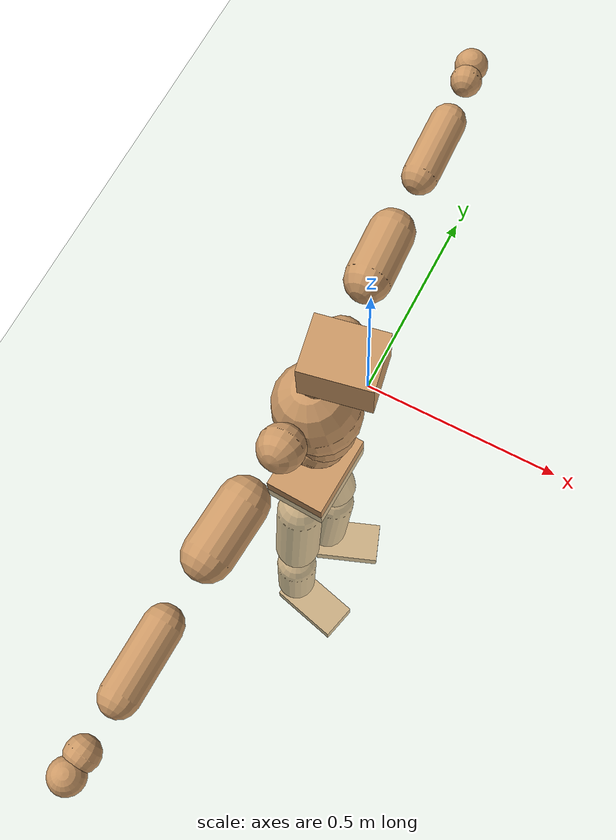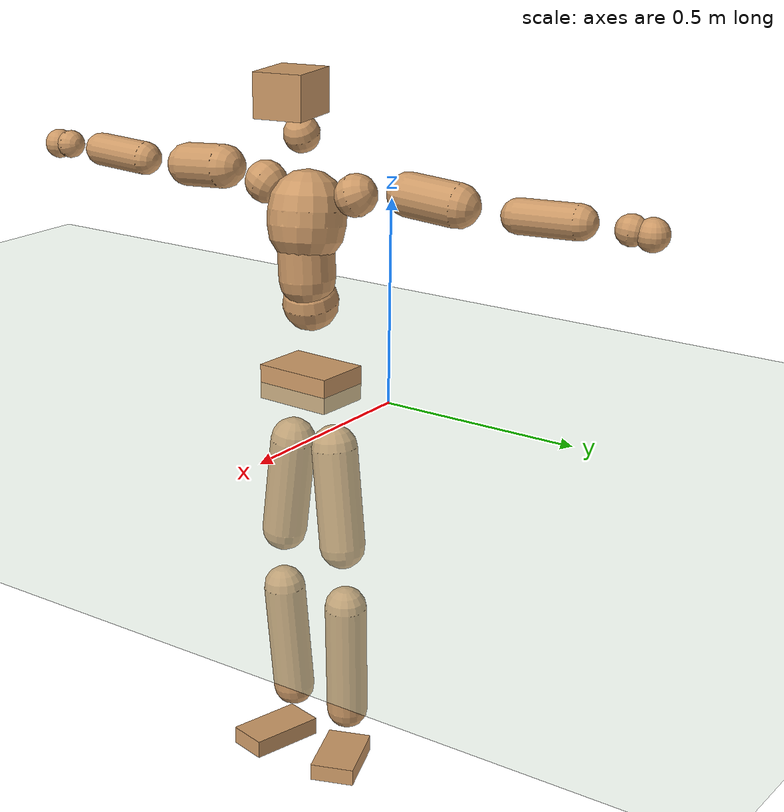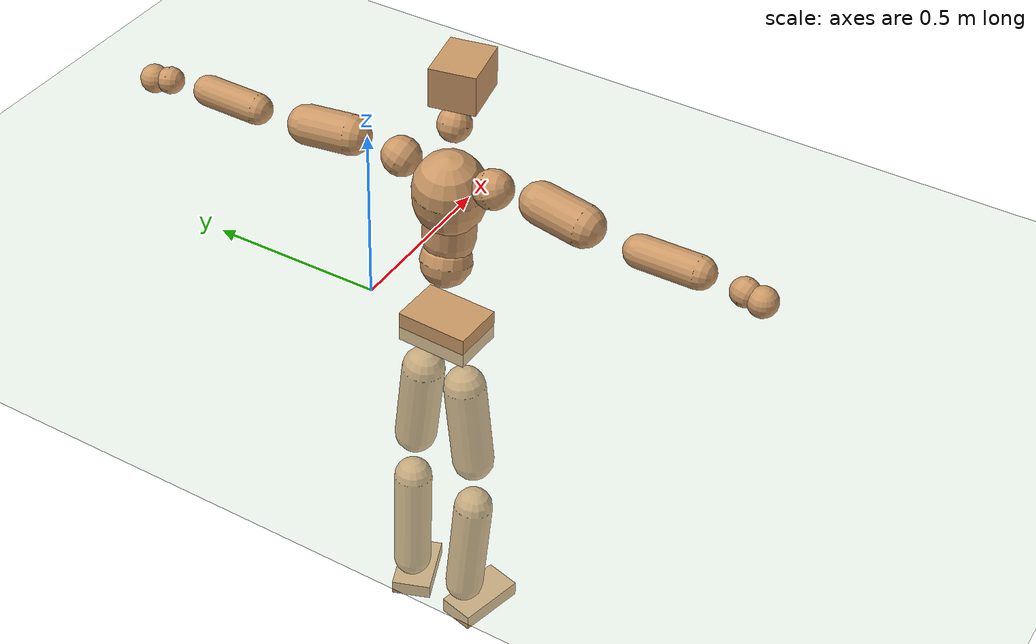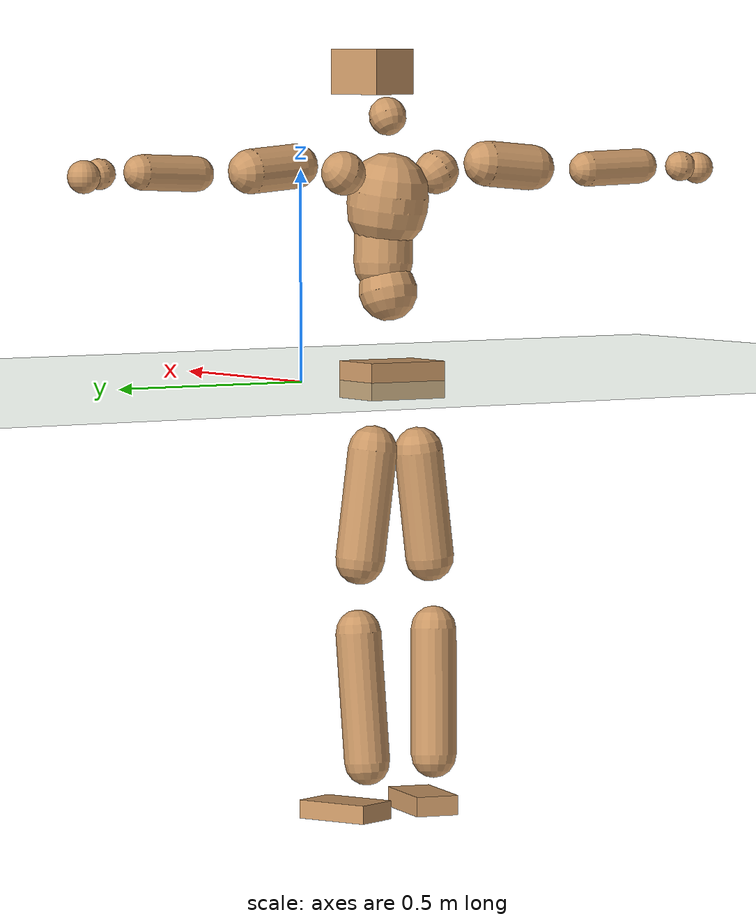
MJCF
<mujoco model="humanoid">
  <compiler coordinate="local" angle="radian"/>
  <default>
    <joint damping="0.0" armature="0.01" stiffness="0.0" limited="true"/>
    <geom conaffinity="1" condim="3" contype="7" margin="0.001" rgba="0.8 0.6 .4 1"/>
  </default>
  <asset>
    <texture type="skybox" builtin="gradient" rgb1=".4 .5 .6" rgb2="0 0 0" width="100" height="100"/>
    <texture builtin="flat" height="1278" mark="cross" markrgb="1 1 1" name="texgeom" random="0.01" rgb1="0.8 0.6 0.4" rgb2="0.8 0.6 0.4" type="cube" width="127"/>
    <texture builtin="checker" height="100" name="texplane" rgb1="0 0 0" rgb2="0.8 0.8 0.8" type="2d" width="100"/>
    <material name="MatPlane" reflectance="0.5" shininess="1" specular="1" texrepeat="60 60" texture="texplane"/>
    <material name="geom" texture="texgeom" texuniform="true"/>
  </asset>
  <worldbody>
    <light cutoff="100" diffuse="1 1 1" dir="-0 0 -1.3" directional="true" exponent="1" pos="0 0 1.3" specular=".1 .1 .1"/>
    <geom conaffinity="1" condim="3" name="floor" pos="0 0 0" rgba="0.8 0.9 0.8 1" size="100 100 .2" type="plane" material="MatPlane"/>
    <body name="Pelvis" pos="-0.0022 -0.2471 0.0086">
      <freejoint name="Pelvis"/>
      <geom type="box" contype="1" conaffinity="1" density="5359.374557" pos="-0.0128 0.0005 -0.0091" size="0.0737 0.1015 0.044" quat="0.9998 0.0000 0.0000 -0.0203" name="Pelvis"/>
      <body name="L_Hip" pos="-0.028 0.0541 -0.0863">
        <joint name="L_Hip_x" type="hinge" pos="0 0 0" axis="1 0 0" stiffness="1600" damping="160" armature="0.02" range="-180.0000 180.0000"/>
        <joint name="L_Hip_y" type="hinge" pos="0 0 0" axis="0 1 0" stiffness="1600" damping="160" armature="0.02" range="-180.0000 180.0000"/>
        <joint name="L_Hip_z" type="hinge" pos="0 0 0" axis="0 0 1" stiffness="1600" damping="160" armature="0.02" range="-180.0000 180.0000"/>
        <geom type="capsule" contype="1" conaffinity="1" density="2040.816327" size="0.059" fromto="0.0023 0.0106 -0.0884 0.0090 0.0417 -0.3479" name="L_Hip"/>
        <body name="L_Knee" pos="0.0113 0.0522 -0.4363">
          <joint name="L_Knee_x" type="hinge" pos="0 0 0" axis="1 0 0" stiffness="1600" damping="160" armature="0.02" range="-180.0000 180.0000"/>
          <joint name="L_Knee_y" type="hinge" pos="0 0 0" axis="0 1 0" stiffness="1600" damping="160" armature="0.02" range="-180.0000 180.0000"/>
          <joint name="L_Knee_z" type="hinge" pos="0 0 0" axis="0 0 1" stiffness="1600" damping="160" armature="0.02" range="-180.0000 180.0000"/>
          <geom type="capsule" contype="1" conaffinity="1" density="1234.567901" size="0.0543" fromto="-0.0064 -0.0026 -0.0840 -0.0298 -0.0120 -0.3925" name="L_Knee"/>
          <body name="L_Ankle" pos="-0.0362 -0.0146 -0.4765">
            <joint name="L_Ankle_x" type="hinge" pos="0 0 0" axis="1 0 0" stiffness="1600" damping="160" armature="0.02" range="-180.0000 180.0000"/>
            <joint name="L_Ankle_y" type="hinge" pos="0 0 0" axis="0 1 0" stiffness="1600" damping="160" armature="0.02" range="-180.0000 180.0000"/>
            <joint name="L_Ankle_z" type="hinge" pos="0 0 0" axis="0 0 1" stiffness="1600" damping="160" armature="0.02" range="-180.0000 180.0000"/>
            <geom type="box" contype="1" conaffinity="1" density="999.999981" pos="0.0660 0.0250 -0.0337" size="0.0929 0.0568 0.022" quat="0.9837 0.0000 0.0000 0.1799" name="L_Ankle"/>
            <body name="L_Toe" pos="0.132 0.05 -0.0674">
              <joint name="L_Toe_x" type="hinge" pos="0 0 0" axis="1 0 0" stiffness="1000" damping="100" armature="0.02" range="-180.0000 180.0000"/>
              <joint name="L_Toe_y" type="hinge" pos="0 0 0" axis="0 1 0" stiffness="1000" damping="100" armature="0.02" range="-180.0000 180.0000"/>
              <joint name="L_Toe_z" type="hinge" pos="0 0 0" axis="0 0 1" stiffness="1000" damping="100" armature="0.02" range="-180.0000 180.0000"/>
              <geom type="box" contype="1" conaffinity="1" density="7565490.881446" pos="0.0000 0.0000 0.0353" size="0.0011 0.0027 0.0012" quat="0.9829 0.0000 0.0000 0.1839" name="L_Toe"/>
            </body>
          </body>
        </body>
      </body>
      <body name="R_Hip" pos="-0.026 -0.0554 -0.0947">
        <joint name="R_Hip_x" type="hinge" pos="0 0 0" axis="1 0 0" stiffness="1600" damping="160" armature="0.02" range="-180.0000 180.0000"/>
        <joint name="R_Hip_y" type="hinge" pos="0 0 0" axis="0 1 0" stiffness="1600" damping="160" armature="0.02" range="-180.0000 180.0000"/>
        <joint name="R_Hip_z" type="hinge" pos="0 0 0" axis="0 0 1" stiffness="1600" damping="160" armature="0.02" range="-180.0000 180.0000"/>
        <geom type="capsule" contype="1" conaffinity="1" density="2040.816327" size="0.0582" fromto="-0.0006 -0.0108 -0.0875 -0.0022 -0.0421 -0.3422" name="R_Hip"/>
        <body name="R_Knee" pos="-0.0027 -0.0529 -0.4297">
          <joint name="R_Knee_x" type="hinge" pos="0 0 0" axis="1 0 0" stiffness="1600" damping="160" armature="0.02" range="-180.0000 180.0000"/>
          <joint name="R_Knee_y" type="hinge" pos="0 0 0" axis="0 1 0" stiffness="1600" damping="160" armature="0.02" range="-180.0000 180.0000"/>
          <joint name="R_Knee_z" type="hinge" pos="0 0 0" axis="0 0 1" stiffness="1600" damping="160" armature="0.02" range="-180.0000 180.0000"/>
          <geom type="capsule" contype="1" conaffinity="1" density="1234.567901" size="0.0546" fromto="-0.0059 0.0039 -0.0844 -0.0272 0.0177 -0.3853" name="R_Knee"/>
          <body name="R_Ankle" pos="-0.0331 0.0216 -0.4697">
            <joint name="R_Ankle_x" type="hinge" pos="0 0 0" axis="1 0 0" stiffness="1600" damping="160" armature="0.02" range="-180.0000 180.0000"/>
            <joint name="R_Ankle_y" type="hinge" pos="0 0 0" axis="0 1 0" stiffness="1600" damping="160" armature="0.02" range="-180.0000 180.0000"/>
            <joint name="R_Ankle_z" type="hinge" pos="0 0 0" axis="0 0 1" stiffness="1600" damping="160" armature="0.02" range="-180.0000 180.0000"/>
            <geom type="box" contype="1" conaffinity="1" density="999.999989" pos="0.0717 -0.0174 -0.0351" size="0.0995 0.0521 0.0236" quat="0.9929 0.0000 0.0000 -0.1190" name="R_Ankle"/>
            <body name="R_Toe" pos="0.1434 -0.0349 -0.0702">
              <joint name="R_Toe_x" type="hinge" pos="0 0 0" axis="1 0 0" stiffness="1000" damping="100" armature="0.02" range="-180.0000 180.0000"/>
              <joint name="R_Toe_y" type="hinge" pos="0 0 0" axis="0 1 0" stiffness="1000" damping="100" armature="0.02" range="-180.0000 180.0000"/>
              <joint name="R_Toe_z" type="hinge" pos="0 0 0" axis="0 0 1" stiffness="1000" damping="100" armature="0.02" range="-180.0000 180.0000"/>
              <geom type="box" contype="1" conaffinity="1" density="8530488.618754" pos="0.0000 0.0000 0.0373" size="0.001 0.0025 0.0013" quat="0.9938 0.0000 0.0000 -0.1110" name="R_Toe"/>
            </body>
          </body>
        </body>
      </body>
      <body name="Torso" pos="-0.0226 0.0044 0.1266">
        <joint name="Torso_x" type="hinge" pos="0 0 0" axis="1 0 0" stiffness="2000" damping="200" armature="0.02" range="-180.0000 180.0000"/>
        <joint name="Torso_y" type="hinge" pos="0 0 0" axis="0 1 0" stiffness="2000" damping="200" armature="0.02" range="-180.0000 180.0000"/>
        <joint name="Torso_z" type="hinge" pos="0 0 0" axis="0 0 1" stiffness="2000" damping="200" armature="0.02" range="-180.0000 180.0000"/>
        <geom type="capsule" contype="1" conaffinity="1" density="2040.816327" size="0.0703" fromto="0.0171 0.0023 0.0733 0.0176 0.0024 0.0752" name="Torso"/>
        <body name="Spine" pos="0.0347 0.0047 0.1485">
          <joint name="Spine_x" type="hinge" pos="0 0 0" axis="1 0 0" stiffness="2000" damping="200" armature="0.02" range="-180.0000 180.0000"/>
          <joint name="Spine_y" type="hinge" pos="0 0 0" axis="0 1 0" stiffness="2000" damping="200" armature="0.02" range="-180.0000 180.0000"/>
          <joint name="Spine_z" type="hinge" pos="0 0 0" axis="0 0 1" stiffness="2000" damping="200" armature="0.02" range="-180.0000 180.0000"/>
          <geom type="capsule" contype="1" conaffinity="1" density="2040.816327" size="0.0706" fromto="0.0013 -0.0030 0.0705 -0.0002 0.0004 -0.0096" name="Spine"/>
          <body name="Chest" pos="0.0011 -0.0026 0.0609">
            <joint name="Chest_x" type="hinge" pos="0 0 0" axis="1 0 0" stiffness="2000" damping="200" armature="0.02" range="-180.0000 180.0000"/>
            <joint name="Chest_y" type="hinge" pos="0 0 0" axis="0 1 0" stiffness="2000" damping="200" armature="0.02" range="-180.0000 180.0000"/>
            <joint name="Chest_z" type="hinge" pos="0 0 0" axis="0 0 1" stiffness="2000" damping="200" armature="0.02" range="-180.0000 180.0000"/>
            <geom type="capsule" contype="1" conaffinity="1" density="2040.816327" size="0.097" fromto="-0.0133 -0.0054 0.0959 -0.0082 -0.0033 0.0591" name="Chest"/>
            <body name="Neck" pos="-0.0256 -0.0151 0.2265">
              <joint name="Neck_x" type="hinge" pos="0 0 0" axis="1 0 0" stiffness="1000" damping="100" armature="0.02" range="-180.0000 180.0000"/>
              <joint name="Neck_y" type="hinge" pos="0 0 0" axis="0 1 0" stiffness="1000" damping="100" armature="0.02" range="-180.0000 180.0000"/>
              <joint name="Neck_z" type="hinge" pos="0 0 0" axis="0 0 1" stiffness="1000" damping="100" armature="0.02" range="-180.0000 180.0000"/>
              <geom type="capsule" contype="1" conaffinity="1" density="1000" size="0.0446" fromto="0.0250 0.0041 0.0510 0.0259 0.0042 0.0528" name="Neck"/>
              <body name="Head" pos="0.0509 0.0083 0.1039">
                <joint name="Head_x" type="hinge" pos="0 0 0" axis="1 0 0" stiffness="1000" damping="100" armature="0.02" range="-180.0000 180.0000"/>
                <joint name="Head_y" type="hinge" pos="0 0 0" axis="0 1 0" stiffness="1000" damping="100" armature="0.02" range="-180.0000 180.0000"/>
                <joint name="Head_z" type="hinge" pos="0 0 0" axis="0 0 1" stiffness="1000" damping="100" armature="0.02" range="-180.0000 180.0000"/>
                <geom type="box" contype="1" conaffinity="1" density="2250.000207" pos="0.0265 0.0052 0.0529" size="0.0762 0.0615 0.0536" quat="0.9954 0.0000 0.0000 0.0962" name="Head"/>
              </body>
            </body>
            <body name="L_Thorax" pos="-0.0175 0.0704 0.1201">
              <joint name="L_Thorax_x" type="hinge" pos="0 0 0" axis="1 0 0" stiffness="1000" damping="100" armature="0.02" range="-180.0000 180.0000"/>
              <joint name="L_Thorax_y" type="hinge" pos="0 0 0" axis="0 1 0" stiffness="1000" damping="100" armature="0.02" range="-180.0000 180.0000"/>
              <joint name="L_Thorax_z" type="hinge" pos="0 0 0" axis="0 0 1" stiffness="1000" damping="100" armature="0.02" range="-180.0000 180.0000"/>
              <geom type="capsule" contype="1" conaffinity="1" density="1000" size="0.052" fromto="-0.0059 0.0586 0.0250 -0.0061 0.0604 0.0258" name="L_Thorax"/>
              <body name="L_Shoulder" pos="-0.0119 0.1191 0.0508">
                <joint name="L_Shoulder_x" type="hinge" pos="0 0 0" axis="1 0 0" stiffness="1000" damping="100" armature="0.02" range="-720.0000 720.0000"/>
                <joint name="L_Shoulder_y" type="hinge" pos="0 0 0" axis="0 1 0" stiffness="1000" damping="100" armature="0.02" range="-720.0000 720.0000"/>
                <joint name="L_Shoulder_z" type="hinge" pos="0 0 0" axis="0 0 1" stiffness="1000" damping="100" armature="0.02" range="-720.0000 720.0000"/>
                <geom type="capsule" contype="1" conaffinity="1" density="1000" size="0.0529" fromto="-0.0054 0.0824 -0.0066 -0.0139 0.2118 -0.0169" name="L_Shoulder"/>
                <body name="L_Elbow" pos="-0.0193 0.2943 -0.0235">
                  <joint name="L_Elbow_x" type="hinge" pos="0 0 0" axis="1 0 0" stiffness="1000" damping="100" armature="0.02" range="-720.0000 720.0000"/>
                  <joint name="L_Elbow_y" type="hinge" pos="0 0 0" axis="0 1 0" stiffness="1000" damping="100" armature="0.02" range="-720.0000 720.0000"/>
                  <joint name="L_Elbow_z" type="hinge" pos="0 0 0" axis="0 0 1" stiffness="1000" damping="100" armature="0.02" range="-720.0000 720.0000"/>
                  <geom type="capsule" contype="1" conaffinity="1" density="1000" size="0.0413" fromto="-0.0023 0.0712 0.0030 -0.0072 0.2219 0.0092" name="L_Elbow"/>
                  <body name="L_Wrist" pos="-0.0096 0.2932 0.0122">
                    <joint name="L_Wrist_x" type="hinge" pos="0 0 0" axis="1 0 0" stiffness="600" damping="60" armature="0.02" range="-180.0000 180.0000"/>
                    <joint name="L_Wrist_y" type="hinge" pos="0 0 0" axis="0 1 0" stiffness="600" damping="60" armature="0.02" range="-180.0000 180.0000"/>
                    <joint name="L_Wrist_z" type="hinge" pos="0 0 0" axis="0 0 1" stiffness="600" damping="60" armature="0.02" range="-180.0000 180.0000"/>
                    <geom type="capsule" contype="1" conaffinity="1" density="1000" size="0.036" fromto="-0.0085 0.0458 -0.0054 -0.0089 0.0477 -0.0056" name="L_Wrist"/>
                    <body name="L_Hand" pos="-0.0174 0.0935 -0.011">
                      <joint name="L_Hand_x" type="hinge" pos="0 0 0" axis="1 0 0" stiffness="600" damping="60" armature="0.02" range="-180.0000 180.0000"/>
                      <joint name="L_Hand_y" type="hinge" pos="0 0 0" axis="0 1 0" stiffness="600" damping="60" armature="0.02" range="-180.0000 180.0000"/>
                      <joint name="L_Hand_z" type="hinge" pos="0 0 0" axis="0 0 1" stiffness="600" damping="60" armature="0.02" range="-180.0000 180.0000"/>
                      <geom type="sphere" contype="1" conaffinity="1" density="1000" size="0.0381" pos="0.0000 0.0000 0.0000" name="L_Hand"/>
                    </body>
                  </body>
                </body>
              </body>
            </body>
            <body name="R_Thorax" pos="-0.0214 -0.0813 0.1186">
              <joint name="R_Thorax_x" type="hinge" pos="0 0 0" axis="1 0 0" stiffness="1000" damping="100" armature="0.02" range="-180.0000 180.0000"/>
              <joint name="R_Thorax_y" type="hinge" pos="0 0 0" axis="0 1 0" stiffness="1000" damping="100" armature="0.02" range="-180.0000 180.0000"/>
              <joint name="R_Thorax_z" type="hinge" pos="0 0 0" axis="0 0 1" stiffness="1000" damping="100" armature="0.02" range="-180.0000 180.0000"/>
              <geom type="capsule" contype="1" conaffinity="1" density="1000" size="0.0525" fromto="-0.0008 -0.0543 0.0260 -0.0008 -0.0561 0.0269" name="R_Thorax"/>
              <body name="R_Shoulder" pos="-0.0016 -0.1104 0.0529">
                <joint name="R_Shoulder_x" type="hinge" pos="0 0 0" axis="1 0 0" stiffness="1000" damping="100" armature="0.02" range="-720.0000 720.0000"/>
                <joint name="R_Shoulder_y" type="hinge" pos="0 0 0" axis="0 1 0" stiffness="1000" damping="100" armature="0.02" range="-720.0000 720.0000"/>
                <joint name="R_Shoulder_z" type="hinge" pos="0 0 0" axis="0 0 1" stiffness="1000" damping="100" armature="0.02" range="-720.0000 720.0000"/>
                <geom type="capsule" contype="1" conaffinity="1" density="1000" size="0.0548" fromto="-0.0078 -0.0841 -0.0078 -0.0193 -0.2085 -0.0192" name="R_Shoulder"/>
                <body name="R_Elbow" pos="-0.027 -0.2926 -0.027">
                  <joint name="R_Elbow_x" type="hinge" pos="0 0 0" axis="1 0 0" stiffness="1000" damping="100" armature="0.02" range="-720.0000 720.0000"/>
                  <joint name="R_Elbow_y" type="hinge" pos="0 0 0" axis="0 1 0" stiffness="1000" damping="100" armature="0.02" range="-720.0000 720.0000"/>
                  <joint name="R_Elbow_z" type="hinge" pos="0 0 0" axis="0 0 1" stiffness="1000" damping="100" armature="0.02" range="-720.0000 720.0000"/>
                  <geom type="capsule" contype="1" conaffinity="1" density="1000" size="0.0423" fromto="-0.0018 -0.0722 0.0025 -0.0056 -0.2288 0.0079" name="R_Elbow"/>
                  <body name="R_Wrist" pos="-0.0074 -0.301 0.0104">
                    <joint name="R_Wrist_x" type="hinge" pos="0 0 0" axis="1 0 0" stiffness="600" damping="60" armature="0.02" range="-180.0000 180.0000"/>
                    <joint name="R_Wrist_y" type="hinge" pos="0 0 0" axis="0 1 0" stiffness="600" damping="60" armature="0.02" range="-180.0000 180.0000"/>
                    <joint name="R_Wrist_z" type="hinge" pos="0 0 0" axis="0 0 1" stiffness="600" damping="60" armature="0.02" range="-180.0000 180.0000"/>
                    <geom type="capsule" contype="1" conaffinity="1" density="1000" size="0.0364" fromto="-0.0054 -0.0464 -0.0043 -0.0057 -0.0484 -0.0045" name="R_Wrist"/>
                    <body name="R_Hand" pos="-0.0111 -0.0948 -0.0088">
                      <joint name="R_Hand_x" type="hinge" pos="0 0 0" axis="1 0 0" stiffness="600" damping="60" armature="0.02" range="-180.0000 180.0000"/>
                      <joint name="R_Hand_y" type="hinge" pos="0 0 0" axis="0 1 0" stiffness="600" damping="60" armature="0.02" range="-180.0000 180.0000"/>
                      <joint name="R_Hand_z" type="hinge" pos="0 0 0" axis="0 0 1" stiffness="600" damping="60" armature="0.02" range="-180.0000 180.0000"/>
                      <geom type="sphere" contype="1" conaffinity="1" density="1000" size="0.0383" pos="0.0000 0.0000 0.0000" name="R_Hand"/>
                    </body>
                  </body>
                </body>
              </body>
            </body>
          </body>
        </body>
      </body>
    </body>
  </worldbody>
  <actuator>
    <motor name="L_Hip_x" joint="L_Hip_x" gear="500"/>
    <motor name="L_Hip_y" joint="L_Hip_y" gear="500"/>
    <motor name="L_Hip_z" joint="L_Hip_z" gear="500"/>
    <motor name="L_Knee_x" joint="L_Knee_x" gear="500"/>
    <motor name="L_Knee_y" joint="L_Knee_y" gear="500"/>
    <motor name="L_Knee_z" joint="L_Knee_z" gear="500"/>
    <motor name="L_Ankle_x" joint="L_Ankle_x" gear="500"/>
    <motor name="L_Ankle_y" joint="L_Ankle_y" gear="500"/>
    <motor name="L_Ankle_z" joint="L_Ankle_z" gear="500"/>
    <motor name="L_Toe_x" joint="L_Toe_x" gear="500"/>
    <motor name="L_Toe_y" joint="L_Toe_y" gear="500"/>
    <motor name="L_Toe_z" joint="L_Toe_z" gear="500"/>
    <motor name="R_Hip_x" joint="R_Hip_x" gear="500"/>
    <motor name="R_Hip_y" joint="R_Hip_y" gear="500"/>
    <motor name="R_Hip_z" joint="R_Hip_z" gear="500"/>
    <motor name="R_Knee_x" joint="R_Knee_x" gear="500"/>
    <motor name="R_Knee_y" joint="R_Knee_y" gear="500"/>
    <motor name="R_Knee_z" joint="R_Knee_z" gear="500"/>
    <motor name="R_Ankle_x" joint="R_Ankle_x" gear="500"/>
    <motor name="R_Ankle_y" joint="R_Ankle_y" gear="500"/>
    <motor name="R_Ankle_z" joint="R_Ankle_z" gear="500"/>
    <motor name="R_Toe_x" joint="R_Toe_x" gear="500"/>
    <motor name="R_Toe_y" joint="R_Toe_y" gear="500"/>
    <motor name="R_Toe_z" joint="R_Toe_z" gear="500"/>
    <motor name="Torso_x" joint="Torso_x" gear="500"/>
    <motor name="Torso_y" joint="Torso_y" gear="500"/>
    <motor name="Torso_z" joint="Torso_z" gear="500"/>
    <motor name="Spine_x" joint="Spine_x" gear="500"/>
    <motor name="Spine_y" joint="Spine_y" gear="500"/>
    <motor name="Spine_z" joint="Spine_z" gear="500"/>
    <motor name="Chest_x" joint="Chest_x" gear="500"/>
    <motor name="Chest_y" joint="Chest_y" gear="500"/>
    <motor name="Chest_z" joint="Chest_z" gear="500"/>
    <motor name="Neck_x" joint="Neck_x" gear="500"/>
    <motor name="Neck_y" joint="Neck_y" gear="500"/>
    <motor name="Neck_z" joint="Neck_z" gear="500"/>
    <motor name="Head_x" joint="Head_x" gear="500"/>
    <motor name="Head_y" joint="Head_y" gear="500"/>
    <motor name="Head_z" joint="Head_z" gear="500"/>
    <motor name="L_Thorax_x" joint="L_Thorax_x" gear="500"/>
    <motor name="L_Thorax_y" joint="L_Thorax_y" gear="500"/>
    <motor name="L_Thorax_z" joint="L_Thorax_z" gear="500"/>
    <motor name="L_Shoulder_x" joint="L_Shoulder_x" gear="500"/>
    <motor name="L_Shoulder_y" joint="L_Shoulder_y" gear="500"/>
    <motor name="L_Shoulder_z" joint="L_Shoulder_z" gear="500"/>
    <motor name="L_Elbow_x" joint="L_Elbow_x" gear="500"/>
    <motor name="L_Elbow_y" joint="L_Elbow_y" gear="500"/>
    <motor name="L_Elbow_z" joint="L_Elbow_z" gear="500"/>
    <motor name="L_Wrist_x" joint="L_Wrist_x" gear="500"/>
    <motor name="L_Wrist_y" joint="L_Wrist_y" gear="500"/>
    <motor name="L_Wrist_z" joint="L_Wrist_z" gear="500"/>
    <motor name="L_Hand_x" joint="L_Hand_x" gear="500"/>
    <motor name="L_Hand_y" joint="L_Hand_y" gear="500"/>
    <motor name="L_Hand_z" joint="L_Hand_z" gear="500"/>
    <motor name="R_Thorax_x" joint="R_Thorax_x" gear="500"/>
    <motor name="R_Thorax_y" joint="R_Thorax_y" gear="500"/>
    <motor name="R_Thorax_z" joint="R_Thorax_z" gear="500"/>
    <motor name="R_Shoulder_x" joint="R_Shoulder_x" gear="500"/>
    <motor name="R_Shoulder_y" joint="R_Shoulder_y" gear="500"/>
    <motor name="R_Shoulder_z" joint="R_Shoulder_z" gear="500"/>
    <motor name="R_Elbow_x" joint="R_Elbow_x" gear="500"/>
    <motor name="R_Elbow_y" joint="R_Elbow_y" gear="500"/>
    <motor name="R_Elbow_z" joint="R_Elbow_z" gear="500"/>
    <motor name="R_Wrist_x" joint="R_Wrist_x" gear="500"/>
    <motor name="R_Wrist_y" joint="R_Wrist_y" gear="500"/>
    <motor name="R_Wrist_z" joint="R_Wrist_z" gear="500"/>
    <motor name="R_Hand_x" joint="R_Hand_x" gear="500"/>
    <motor name="R_Hand_y" joint="R_Hand_y" gear="500"/>
    <motor name="R_Hand_z" joint="R_Hand_z" gear="500"/>
  </actuator>
  <contact>
    <exclude body1="Torso" body2="Chest"/>
    <exclude body1="Head" body2="Chest"/>
    <exclude body1="R_Knee" body2="R_Toe"/>
    <exclude body1="R_Knee" body2="L_Ankle"/>
    <exclude body1="R_Knee" body2="L_Toe"/>
    <exclude body1="L_Knee" body2="L_Toe"/>
    <exclude body1="L_Knee" body2="R_Ankle"/>
    <exclude body1="L_Knee" body2="R_Toe"/>
    <exclude body1="L_Shoulder" body2="Chest"/>
    <exclude body1="R_Shoulder" body2="Chest"/>
  </contact>
  <sensor/>
  <size njmax="700" nconmax="700"/>
</mujoco>
